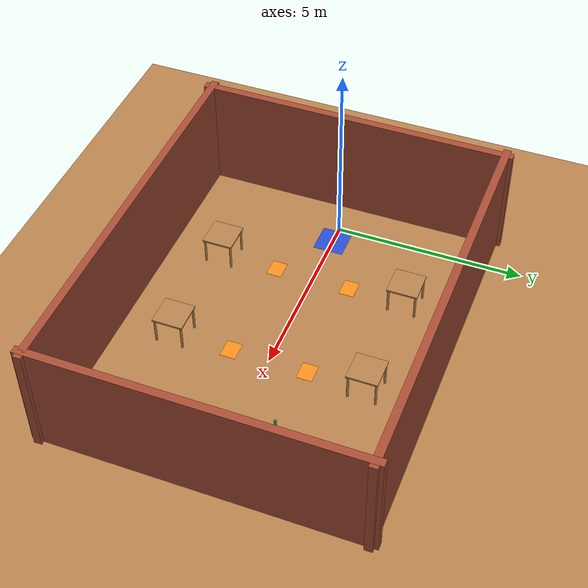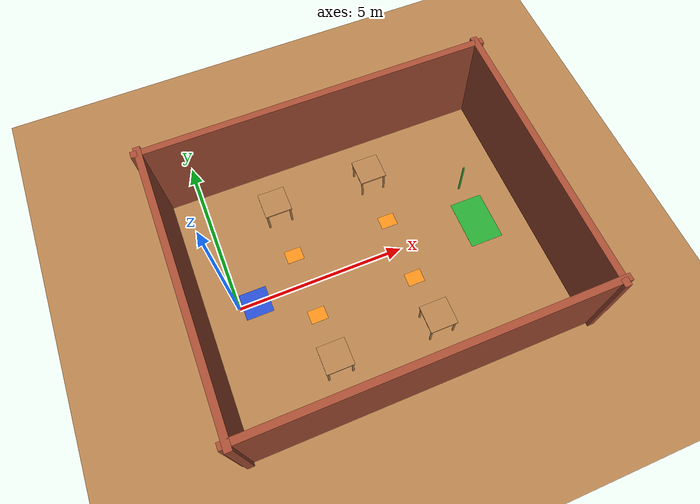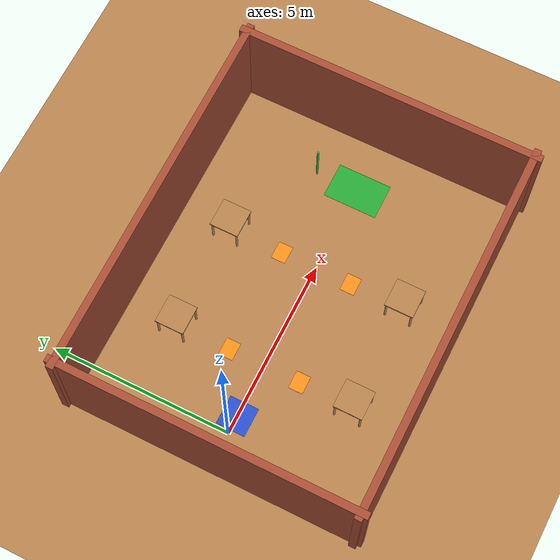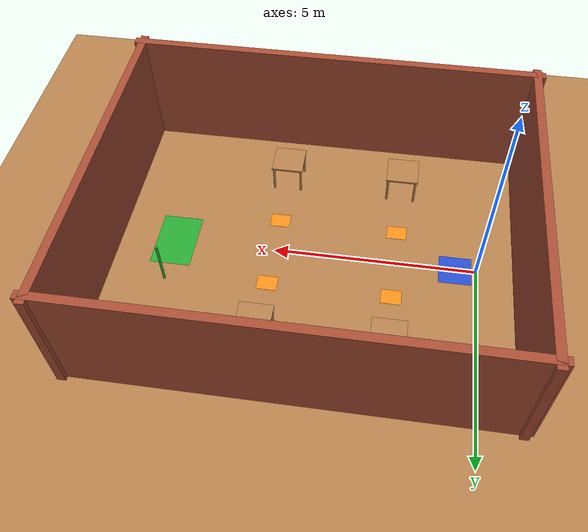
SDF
<?xml version="1.0"?>
<sdf version="1.6">
<world name="simple_cafe">

  <physics name="default_physics" default="true" type="ode">
    <max_step_size>0.001</max_step_size>
    <real_time_factor>1.0</real_time_factor>
    <real_time_update_rate>1000</real_time_update_rate>
    <ode>
      <solver>
        <type>quick</type>
        <iters>150</iters>
        <sor>1.4</sor>
      </solver>
    </ode>
  </physics>

  <!-- ── Lighting ──────────────────────────────────────────────────────── -->
  <light name="sun" type="directional">
    <cast_shadows>true</cast_shadows>
    <pose>0 0 10 0 0 0</pose>
    <diffuse>0.9 0.9 0.9 1</diffuse>
    <specular>0.3 0.3 0.3 1</specular>
    <direction>-0.5 0.5 -1</direction>
  </light>

  <light name="room_light_1" type="point">
    <pose>2.0 0 4.0 0 0 0</pose>
    <diffuse>0.85 0.85 0.80 1</diffuse>
    <specular>0.1 0.1 0.1 1</specular>
    <attenuation>
      <range>12</range><linear>0.05</linear>
      <constant>0.4</constant><quadratic>0.005</quadratic>
    </attenuation>
    <cast_shadows>false</cast_shadows>
  </light>

  <light name="room_light_2" type="point">
    <pose>6.0 0 4.0 0 0 0</pose>
    <diffuse>0.85 0.85 0.80 1</diffuse>
    <specular>0.1 0.1 0.1 1</specular>
    <attenuation>
      <range>12</range><linear>0.05</linear>
      <constant>0.4</constant><quadratic>0.005</quadratic>
    </attenuation>
    <cast_shadows>false</cast_shadows>
  </light>

  <!-- ── Floor ─────────────────────────────────────────────────────────── -->
  <model name="ground_plane">
    <static>true</static>
    <link name="link">
      <collision name="collision">
        <geometry>
          <plane><normal>0 0 1</normal><size>20 20</size></plane>
        </geometry>
        <surface>
          <friction><ode><mu>1.0</mu><mu2>1.0</mu2></ode></friction>
        </surface>
      </collision>
      <visual name="visual">
        <geometry>
          <plane><normal>0 0 1</normal><size>20 20</size></plane>
        </geometry>
        <material>
          <script>
            <uri>file://media/materials/scripts/gazebo.material</uri>
            <name>Gazebo/WoodFloor</name>
          </script>
        </material>
      </visual>
    </link>
  </model>

  <!-- ── WALLS — simple rectangle, all straight, no nooks ─────────────── -->
  <!-- Room interior: x[-1, 9], y[-4, 4], wall thickness 0.2m, height 3m  -->

  <model name="wall_west">
    <static>true</static><pose>-1.0 0 1.5 0 0 0</pose>
    <link name="link">
      <collision name="c">
        <geometry><box><size>0.2 8.4 3.0</size></box></geometry>
      </collision>
      <visual name="v">
        <geometry><box><size>0.2 8.4 3.0</size></box></geometry>
        <material>
          <script>
            <uri>file://media/materials/scripts/gazebo.material</uri>
            <name>Gazebo/Bricks</name>
          </script>
        </material>
      </visual>
    </link>
  </model>

  <model name="wall_east">
    <static>true</static><pose>9.0 0 1.5 0 0 0</pose>
    <link name="link">
      <collision name="c">
        <geometry><box><size>0.2 8.4 3.0</size></box></geometry>
      </collision>
      <visual name="v">
        <geometry><box><size>0.2 8.4 3.0</size></box></geometry>
        <material>
          <script>
            <uri>file://media/materials/scripts/gazebo.material</uri>
            <name>Gazebo/Bricks</name>
          </script>
        </material>
      </visual>
    </link>
  </model>

  <model name="wall_south">
    <static>true</static><pose>4.0 -4.0 1.5 0 0 0</pose>
    <link name="link">
      <collision name="c">
        <geometry><box><size>10.4 0.2 3.0</size></box></geometry>
      </collision>
      <visual name="v">
        <geometry><box><size>10.4 0.2 3.0</size></box></geometry>
        <material>
          <script>
            <uri>file://media/materials/scripts/gazebo.material</uri>
            <name>Gazebo/Bricks</name>
          </script>
        </material>
      </visual>
    </link>
  </model>

  <model name="wall_north">
    <static>true</static><pose>4.0 4.0 1.5 0 0 0</pose>
    <link name="link">
      <collision name="c">
        <geometry><box><size>10.4 0.2 3.0</size></box></geometry>
      </collision>
      <visual name="v">
        <geometry><box><size>10.4 0.2 3.0</size></box></geometry>
        <material>
          <script>
            <uri>file://media/materials/scripts/gazebo.material</uri>
            <name>Gazebo/Bricks</name>
          </script>
        </material>
      </visual>
    </link>
  </model>

  <!-- ── HOME DOCK — blue pad, moved to give clearance from west wall ─── -->
  <model name="home_dock">
    <static>true</static><pose>0.5 0.0 0.002 0 0 0</pose>
    <link name="pad">
      <collision name="c">
        <geometry><box><size>0.8 0.8 0.002</size></box></geometry>
      </collision>
      <visual name="v">
        <geometry><box><size>0.8 0.8 0.002</size></box></geometry>
        <material>
          <script>
            <uri>file://media/materials/scripts/gazebo.material</uri>
            <name>Gazebo/Blue</name>
          </script>
        </material>
      </visual>
    </link>
  </model>

  <!-- ── KITCHEN MARKER — green pad at right, no physical counter ──────── -->
  <!-- No walls or counters around kitchen — robot can approach freely     -->
  <model name="kitchen_marker">
    <static>true</static><pose>7.5 0.0 0.002 0 0 0</pose>
    <link name="pad">
      <collision name="c">
        <geometry><box><size>1.0 1.5 0.002</size></box></geometry>
      </collision>
      <visual name="v">
        <geometry><box><size>1.0 1.5 0.002</size></box></geometry>
        <material>
          <script>
            <uri>file://media/materials/scripts/gazebo.material</uri>
            <name>Gazebo/Green</name>
          </script>
        </material>
      </visual>
    </link>
  </model>

  <!-- Kitchen label post (thin, minimal obstacle) -->
  <model name="kitchen_post">
    <static>true</static><pose>7.5 1.2 0 0 0 0</pose>
    <link name="post"><pose>0 0 0.6 0 0 0</pose>
      <collision name="c">
        <geometry><cylinder><radius>0.03</radius><length>1.2</length></cylinder></geometry>
      </collision>
      <visual name="v">
        <geometry><cylinder><radius>0.03</radius><length>1.2</length></cylinder></geometry>
        <material>
          <script>
            <uri>file://media/materials/scripts/gazebo.material</uri>
            <name>Gazebo/Green</name>
          </script>
        </material>
      </visual>
    </link>
  </model>

  <!-- ── TABLES — 4 simple tables, well spaced from walls and each other ─ -->
  <!-- Each table: 0.8×0.8m top at 0.72m, 4 slim legs                      -->
  <!-- Aisles: ~1.5m between tables and ~2m from walls — plenty of space   -->

  <!-- TABLE 1: (2.0, 2.5) top-left -->
  <model name="table1">
    <static>true</static><pose>2.0 2.5 0 0 0 0</pose>
    <link name="top"><pose>0 0 0.72 0 0 0</pose>
      <collision name="c"><geometry><box><size>0.8 0.8 0.05</size></box></geometry></collision>
      <visual name="v"><geometry><box><size>0.8 0.8 0.05</size></box></geometry>
        <material><script><uri>file://media/materials/scripts/gazebo.material</uri>
          <name>Gazebo/Wood</name></script></material></visual>
    </link>
    <link name="leg_fl"><pose>-0.35 -0.35 0.36 0 0 0</pose>
      <collision name="c"><geometry><cylinder><radius>0.03</radius><length>0.72</length></cylinder></geometry></collision>
      <visual name="v"><geometry><cylinder><radius>0.03</radius><length>0.72</length></cylinder></geometry>
        <material><script><uri>file://media/materials/scripts/gazebo.material</uri>
          <name>Gazebo/WoodPallet</name></script></material></visual></link>
    <link name="leg_fr"><pose> 0.35 -0.35 0.36 0 0 0</pose>
      <collision name="c"><geometry><cylinder><radius>0.03</radius><length>0.72</length></cylinder></geometry></collision>
      <visual name="v"><geometry><cylinder><radius>0.03</radius><length>0.72</length></cylinder></geometry>
        <material><script><uri>file://media/materials/scripts/gazebo.material</uri>
          <name>Gazebo/WoodPallet</name></script></material></visual></link>
    <link name="leg_bl"><pose>-0.35  0.35 0.36 0 0 0</pose>
      <collision name="c"><geometry><cylinder><radius>0.03</radius><length>0.72</length></cylinder></geometry></collision>
      <visual name="v"><geometry><cylinder><radius>0.03</radius><length>0.72</length></cylinder></geometry>
        <material><script><uri>file://media/materials/scripts/gazebo.material</uri>
          <name>Gazebo/WoodPallet</name></script></material></visual></link>
    <link name="leg_br"><pose> 0.35  0.35 0.36 0 0 0</pose>
      <collision name="c"><geometry><cylinder><radius>0.03</radius><length>0.72</length></cylinder></geometry></collision>
      <visual name="v"><geometry><cylinder><radius>0.03</radius><length>0.72</length></cylinder></geometry>
        <material><script><uri>file://media/materials/scripts/gazebo.material</uri>
          <name>Gazebo/WoodPallet</name></script></material></visual></link>
  </model>

  <!-- Delivery marker table1 — orange pad in front of table -->
  <model name="marker_table1">
    <static>true</static><pose>2.0 1.0 0.002 0 0 0</pose>
    <link name="pad">
      <collision name="c"><geometry><box><size>0.5 0.4 0.002</size></box></geometry></collision>
      <visual name="v"><geometry><box><size>0.5 0.4 0.002</size></box></geometry>
        <material><script><uri>file://media/materials/scripts/gazebo.material</uri>
          <name>Gazebo/Orange</name></script></material></visual>
    </link>
  </model>

  <!-- TABLE 2: (2.0, -2.5) bottom-left -->
  <model name="table2">
    <static>true</static><pose>2.0 -2.5 0 0 0 0</pose>
    <link name="top"><pose>0 0 0.72 0 0 0</pose>
      <collision name="c"><geometry><box><size>0.8 0.8 0.05</size></box></geometry></collision>
      <visual name="v"><geometry><box><size>0.8 0.8 0.05</size></box></geometry>
        <material><script><uri>file://media/materials/scripts/gazebo.material</uri>
          <name>Gazebo/Wood</name></script></material></visual>
    </link>
    <link name="leg_fl"><pose>-0.35 -0.35 0.36 0 0 0</pose>
      <collision name="c"><geometry><cylinder><radius>0.03</radius><length>0.72</length></cylinder></geometry></collision>
      <visual name="v"><geometry><cylinder><radius>0.03</radius><length>0.72</length></cylinder></geometry>
        <material><script><uri>file://media/materials/scripts/gazebo.material</uri>
          <name>Gazebo/WoodPallet</name></script></material></visual></link>
    <link name="leg_fr"><pose> 0.35 -0.35 0.36 0 0 0</pose>
      <collision name="c"><geometry><cylinder><radius>0.03</radius><length>0.72</length></cylinder></geometry></collision>
      <visual name="v"><geometry><cylinder><radius>0.03</radius><length>0.72</length></cylinder></geometry>
        <material><script><uri>file://media/materials/scripts/gazebo.material</uri>
          <name>Gazebo/WoodPallet</name></script></material></visual></link>
    <link name="leg_bl"><pose>-0.35  0.35 0.36 0 0 0</pose>
      <collision name="c"><geometry><cylinder><radius>0.03</radius><length>0.72</length></cylinder></geometry></collision>
      <visual name="v"><geometry><cylinder><radius>0.03</radius><length>0.72</length></cylinder></geometry>
        <material><script><uri>file://media/materials/scripts/gazebo.material</uri>
          <name>Gazebo/WoodPallet</name></script></material></visual></link>
    <link name="leg_br"><pose> 0.35  0.35 0.36 0 0 0</pose>
      <collision name="c"><geometry><cylinder><radius>0.03</radius><length>0.72</length></cylinder></geometry></collision>
      <visual name="v"><geometry><cylinder><radius>0.03</radius><length>0.72</length></cylinder></geometry>
        <material><script><uri>file://media/materials/scripts/gazebo.material</uri>
          <name>Gazebo/WoodPallet</name></script></material></visual></link>
  </model>

  <model name="marker_table2">
    <static>true</static><pose>2.0 -1.0 0.002 0 0 0</pose>
    <link name="pad">
      <collision name="c"><geometry><box><size>0.5 0.4 0.002</size></box></geometry></collision>
      <visual name="v"><geometry><box><size>0.5 0.4 0.002</size></box></geometry>
        <material><script><uri>file://media/materials/scripts/gazebo.material</uri>
          <name>Gazebo/Orange</name></script></material></visual>
    </link>
  </model>

  <!-- TABLE 3: (5.0, 2.5) top-right -->
  <model name="table3">
    <static>true</static><pose>5.0 2.5 0 0 0 0</pose>
    <link name="top"><pose>0 0 0.72 0 0 0</pose>
      <collision name="c"><geometry><box><size>0.8 0.8 0.05</size></box></geometry></collision>
      <visual name="v"><geometry><box><size>0.8 0.8 0.05</size></box></geometry>
        <material><script><uri>file://media/materials/scripts/gazebo.material</uri>
          <name>Gazebo/Wood</name></script></material></visual>
    </link>
    <link name="leg_fl"><pose>-0.35 -0.35 0.36 0 0 0</pose>
      <collision name="c"><geometry><cylinder><radius>0.03</radius><length>0.72</length></cylinder></geometry></collision>
      <visual name="v"><geometry><cylinder><radius>0.03</radius><length>0.72</length></cylinder></geometry>
        <material><script><uri>file://media/materials/scripts/gazebo.material</uri>
          <name>Gazebo/WoodPallet</name></script></material></visual></link>
    <link name="leg_fr"><pose> 0.35 -0.35 0.36 0 0 0</pose>
      <collision name="c"><geometry><cylinder><radius>0.03</radius><length>0.72</length></cylinder></geometry></collision>
      <visual name="v"><geometry><cylinder><radius>0.03</radius><length>0.72</length></cylinder></geometry>
        <material><script><uri>file://media/materials/scripts/gazebo.material</uri>
          <name>Gazebo/WoodPallet</name></script></material></visual></link>
    <link name="leg_bl"><pose>-0.35  0.35 0.36 0 0 0</pose>
      <collision name="c"><geometry><cylinder><radius>0.03</radius><length>0.72</length></cylinder></geometry></collision>
      <visual name="v"><geometry><cylinder><radius>0.03</radius><length>0.72</length></cylinder></geometry>
        <material><script><uri>file://media/materials/scripts/gazebo.material</uri>
          <name>Gazebo/WoodPallet</name></script></material></visual></link>
    <link name="leg_br"><pose> 0.35  0.35 0.36 0 0 0</pose>
      <collision name="c"><geometry><cylinder><radius>0.03</radius><length>0.72</length></cylinder></geometry></collision>
      <visual name="v"><geometry><cylinder><radius>0.03</radius><length>0.72</length></cylinder></geometry>
        <material><script><uri>file://media/materials/scripts/gazebo.material</uri>
          <name>Gazebo/WoodPallet</name></script></material></visual></link>
  </model>

  <model name="marker_table3">
    <static>true</static><pose>5.0 1.0 0.002 0 0 0</pose>
    <link name="pad">
      <collision name="c"><geometry><box><size>0.5 0.4 0.002</size></box></geometry></collision>
      <visual name="v"><geometry><box><size>0.5 0.4 0.002</size></box></geometry>
        <material><script><uri>file://media/materials/scripts/gazebo.material</uri>
          <name>Gazebo/Orange</name></script></material></visual>
    </link>
  </model>

  <!-- TABLE 4: (5.0, -2.5) bottom-right -->
  <model name="table4">
    <static>true</static><pose>5.0 -2.5 0 0 0 0</pose>
    <link name="top"><pose>0 0 0.72 0 0 0</pose>
      <collision name="c"><geometry><box><size>0.8 0.8 0.05</size></box></geometry></collision>
      <visual name="v"><geometry><box><size>0.8 0.8 0.05</size></box></geometry>
        <material><script><uri>file://media/materials/scripts/gazebo.material</uri>
          <name>Gazebo/Wood</name></script></material></visual>
    </link>
    <link name="leg_fl"><pose>-0.35 -0.35 0.36 0 0 0</pose>
      <collision name="c"><geometry><cylinder><radius>0.03</radius><length>0.72</length></cylinder></geometry></collision>
      <visual name="v"><geometry><cylinder><radius>0.03</radius><length>0.72</length></cylinder></geometry>
        <material><script><uri>file://media/materials/scripts/gazebo.material</uri>
          <name>Gazebo/WoodPallet</name></script></material></visual></link>
    <link name="leg_fr"><pose> 0.35 -0.35 0.36 0 0 0</pose>
      <collision name="c"><geometry><cylinder><radius>0.03</radius><length>0.72</length></cylinder></geometry></collision>
      <visual name="v"><geometry><cylinder><radius>0.03</radius><length>0.72</length></cylinder></geometry>
        <material><script><uri>file://media/materials/scripts/gazebo.material</uri>
          <name>Gazebo/WoodPallet</name></script></material></visual></link>
    <link name="leg_bl"><pose>-0.35  0.35 0.36 0 0 0</pose>
      <collision name="c"><geometry><cylinder><radius>0.03</radius><length>0.72</length></cylinder></geometry></collision>
      <visual name="v"><geometry><cylinder><radius>0.03</radius><length>0.72</length></cylinder></geometry>
        <material><script><uri>file://media/materials/scripts/gazebo.material</uri>
          <name>Gazebo/WoodPallet</name></script></material></visual></link>
    <link name="leg_br"><pose> 0.35  0.35 0.36 0 0 0</pose>
      <collision name="c"><geometry><cylinder><radius>0.03</radius><length>0.72</length></cylinder></geometry></collision>
      <visual name="v"><geometry><cylinder><radius>0.03</radius><length>0.72</length></cylinder></geometry>
        <material><script><uri>file://media/materials/scripts/gazebo.material</uri>
          <name>Gazebo/WoodPallet</name></script></material></visual></link>
  </model>

  <model name="marker_table4">
    <static>true</static><pose>5.0 -1.0 0.002 0 0 0</pose>
    <link name="pad">
      <collision name="c"><geometry><box><size>0.5 0.4 0.002</size></box></geometry></collision>
      <visual name="v"><geometry><box><size>0.5 0.4 0.002</size></box></geometry>
        <material><script><uri>file://media/materials/scripts/gazebo.material</uri>
          <name>Gazebo/Orange</name></script></material></visual>
    </link>
  </model>

</world>
</sdf>
